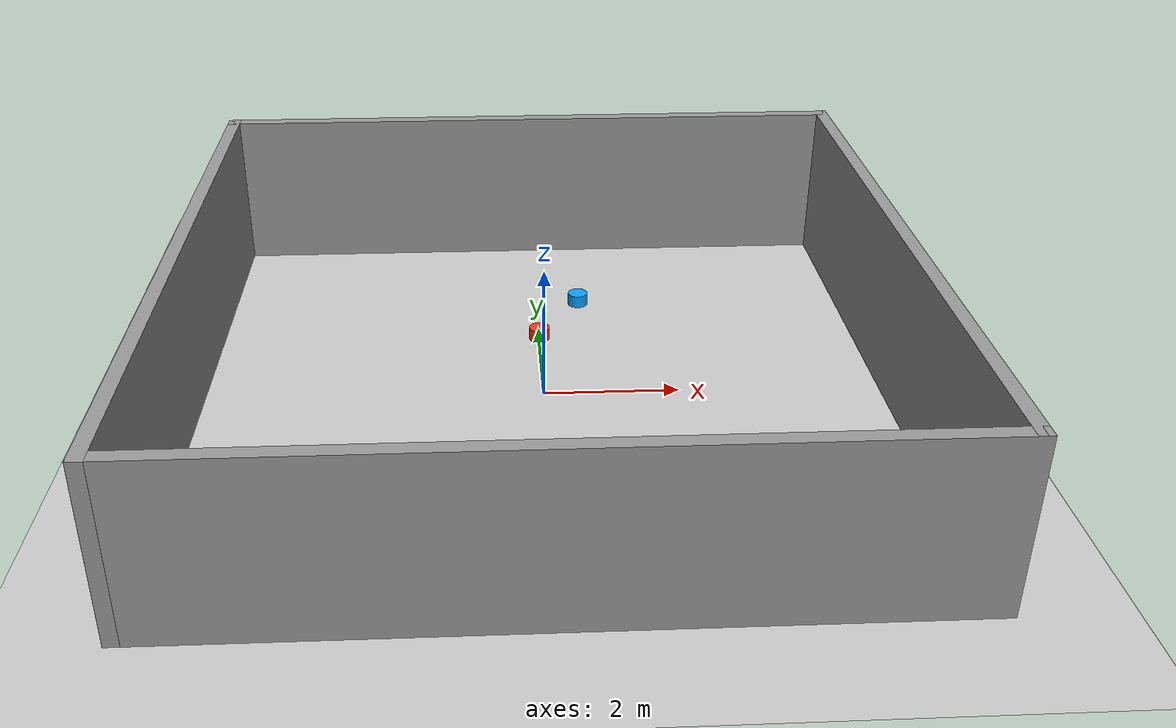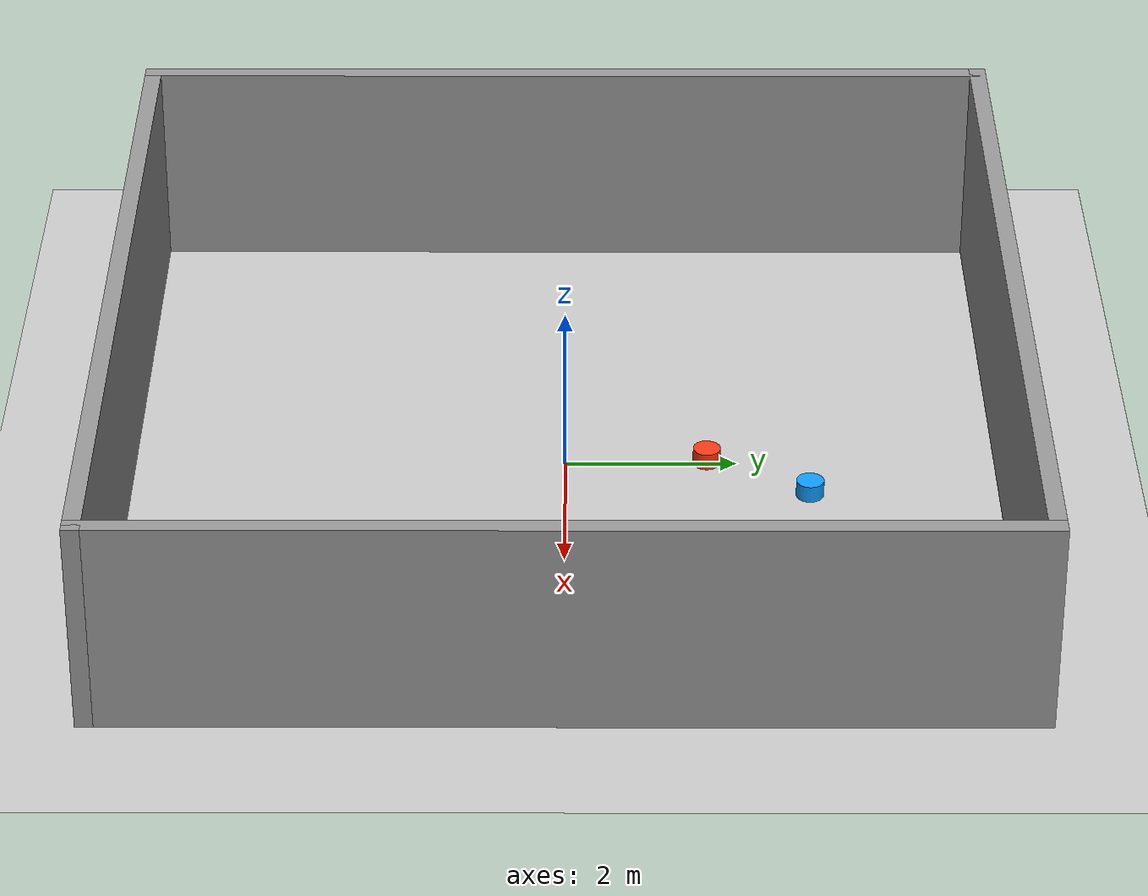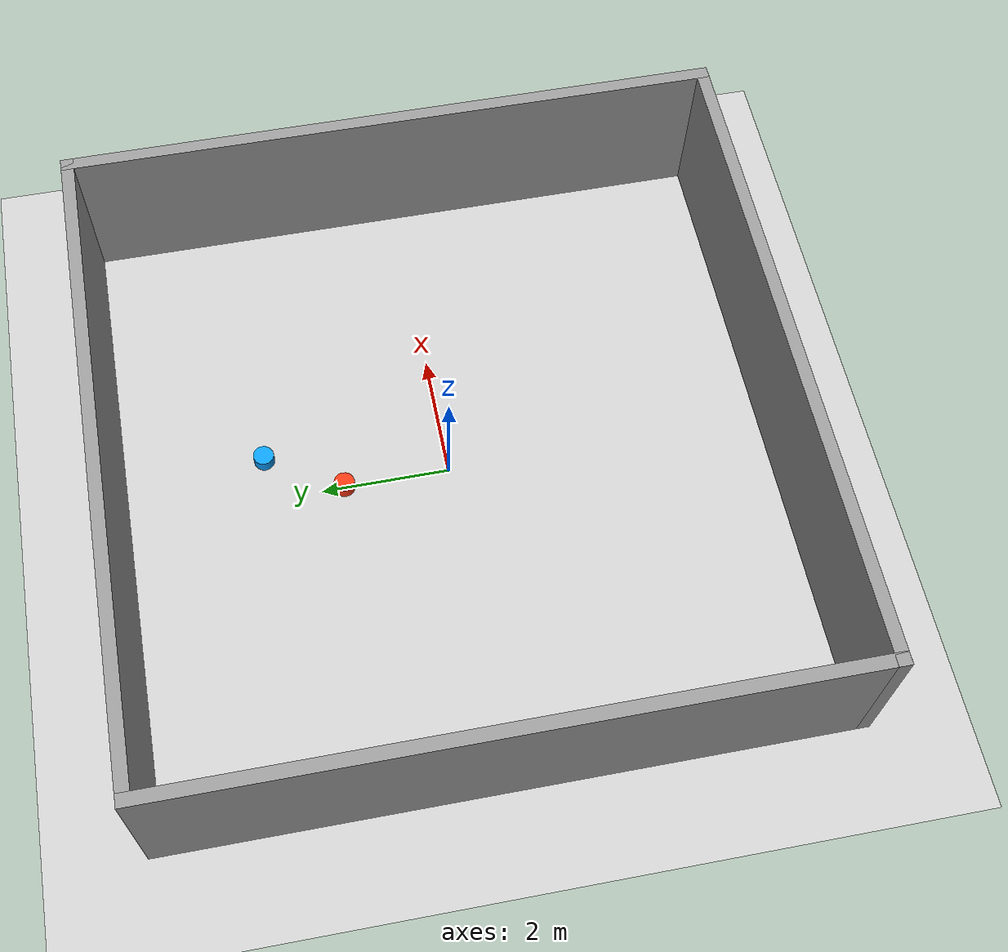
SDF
<?xml version="1.0" ?>
<sdf version="1.5">
  <world name="default">
    <include>
      <uri>model://sun</uri>
    </include>

    <include>
      <uri>model://ground_plane</uri>
    </include>

    <model name="pursuer_object">
      <pose>0 1.65 0.12 0 0 0</pose>
      <link name="body">
        <collision name="collision">
          <geometry>
            <cylinder>
              <radius>0.16</radius>
              <length>0.20</length>
            </cylinder>
          </geometry>
        </collision>
        <visual name="visual">
          <geometry>
            <cylinder>
              <radius>0.16</radius>
              <length>0.20</length>
            </cylinder>
          </geometry>
          <material>
            <ambient>1.0 0.16 0.05 1</ambient>
            <diffuse>1.0 0.22 0.08 1</diffuse>
          </material>
        </visual>
        <inertial>
          <mass>1.0</mass>
          <inertia>
            <ixx>0.005</ixx>
            <iyy>0.005</iyy>
            <izz>0.005</izz>
            <ixy>0</ixy>
            <ixz>0</ixz>
            <iyz>0</iyz>
          </inertia>
        </inertial>
      </link>
    </model>

    <model name="evader_object">
      <pose>0.69 2.82 0.12 0 0 0</pose>
      <link name="body">
        <collision name="collision">
          <geometry>
            <cylinder>
              <radius>0.16</radius>
              <length>0.20</length>
            </cylinder>
          </geometry>
        </collision>
        <visual name="visual">
          <geometry>
            <cylinder>
              <radius>0.16</radius>
              <length>0.20</length>
            </cylinder>
          </geometry>
          <material>
            <ambient>0.02 0.45 1.0 1</ambient>
            <diffuse>0.05 0.62 1.0 1</diffuse>
          </material>
        </visual>
        <inertial>
          <mass>1.0</mass>
          <inertia>
            <ixx>0.005</ixx>
            <iyy>0.005</iyy>
            <izz>0.005</izz>
            <ixy>0</ixy>
            <ixz>0</ixz>
            <iyz>0</iyz>
          </inertia>
        </inertial>
      </link>
    </model>

    <model name="myroom10">
      <pose frame="">0 0 0 0 0 0</pose>
      <link name="Wall_4">
        <collision name="Wall_4_Collision">
          <geometry>
            <box>
              <size>10.4 0.2 2.5</size>
            </box>
          </geometry>
          <pose frame="">0 0 1.25 0 0 0</pose>
        </collision>
        <visual name="Wall_4_Visual">
          <pose frame="">0 0 1.25 0 0 0</pose>
          <geometry>
            <box>
              <size>10.4 0.2 2.5</size>
            </box>
          </geometry>
          <material>
            <script>
              <uri>file://media/materials/scripts/gazebo.material</uri>
              <name>Gazebo/Grey</name>
            </script>
            <ambient>1 1 1 1</ambient>
          </material>
        </visual>
        <pose frame="">-5.1 0 0 0 0 1.5708</pose>
      </link>
      <link name="Wall_5">
        <collision name="Wall_5_Collision">
          <geometry>
            <box>
              <size>10.4 0.2 2.5</size>
            </box>
          </geometry>
          <pose frame="">0 0 1.25 0 0 0</pose>
        </collision>
        <visual name="Wall_5_Visual">
          <pose frame="">0 0 1.25 0 0 0</pose>
          <geometry>
            <box>
              <size>10.4 0.2 2.5</size>
            </box>
          </geometry>
          <material>
            <script>
              <uri>file://media/materials/scripts/gazebo.material</uri>
              <name>Gazebo/Grey</name>
            </script>
            <ambient>1 1 1 1</ambient>
          </material>
        </visual>
        <pose frame="">0 5.1 0 0 0 0</pose>
      </link>
      <link name="Wall_6">
        <collision name="Wall_6_Collision">
          <geometry>
            <box>
              <size>10.4 0.2 2.5</size>
            </box>
          </geometry>
          <pose frame="">0 0 1.25 0 0 0</pose>
        </collision>
        <visual name="Wall_6_Visual">
          <pose frame="">0 0 1.25 0 0 0</pose>
          <geometry>
            <box>
              <size>10.4 0.2 2.5</size>
            </box>
          </geometry>
          <material>
            <script>
              <uri>file://media/materials/scripts/gazebo.material</uri>
              <name>Gazebo/Grey</name>
            </script>
            <ambient>1 1 1 1</ambient>
          </material>
        </visual>
        <pose frame="">5.1 0 0 0 0 -1.5708</pose>
      </link>
      <link name="Wall_7">
        <collision name="Wall_7_Collision">
          <geometry>
            <box>
              <size>10.4 0.2 2.5</size>
            </box>
          </geometry>
          <pose frame="">0 0 1.25 0 0 0</pose>
        </collision>
        <visual name="Wall_7_Visual">
          <pose frame="">0 0 1.25 0 0 0</pose>
          <geometry>
            <box>
              <size>10.4 0.2 2.5</size>
            </box>
          </geometry>
          <material>
            <script>
              <uri>file://media/materials/scripts/gazebo.material</uri>
              <name>Gazebo/Grey</name>
            </script>
            <ambient>1 1 1 1</ambient>
          </material>
        </visual>
        <pose frame="">0 -5.1 0 0 0 3.14159</pose>
      </link>
      <static>1</static>
    </model>
  </world>
</sdf>
